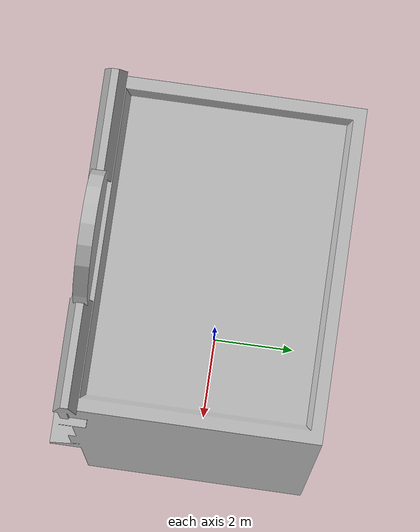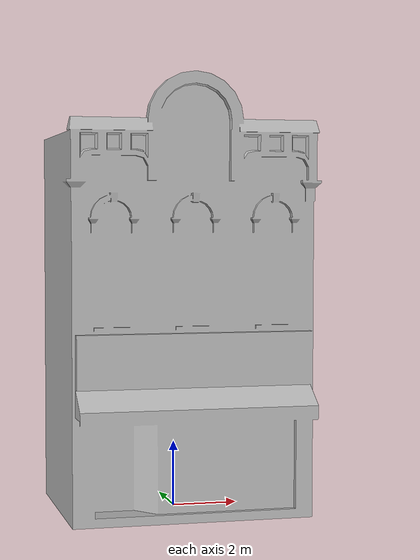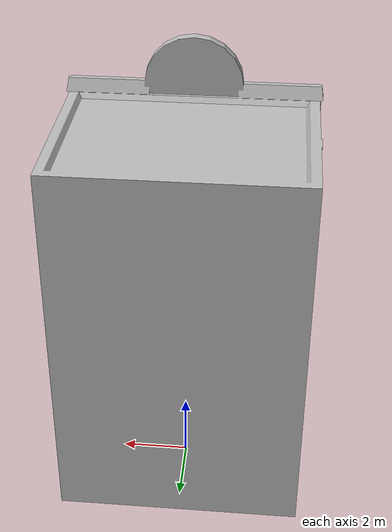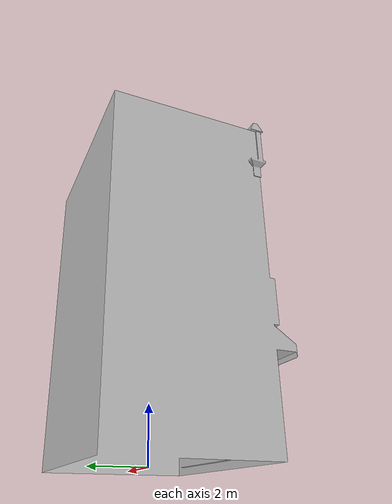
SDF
<?xml version="1.0" ?>
<sdf version="1.6">
  <model name="salon">
    <static>true</static>
    <link name="link">
      <collision name="collision">
        <pose>0 0 5.694693596 0 0 0</pose>
        <geometry>
          <box>
            <size>7.212969278 5.378752065 11.389387193</size>
          </box>
        </geometry>
      </collision>
      <visual name="visual">
        <pose>0 -0.90360491 0 0 0 0</pose>
        <geometry>
          <mesh>
            <uri>model://salon/meshes/salon.dae</uri>
          </mesh>
        </geometry>
      </visual>
    </link>
  </model>
</sdf>
